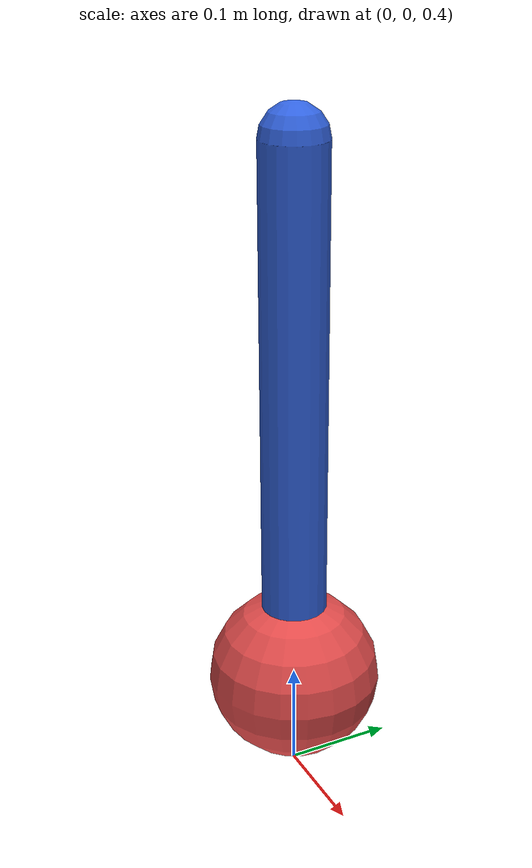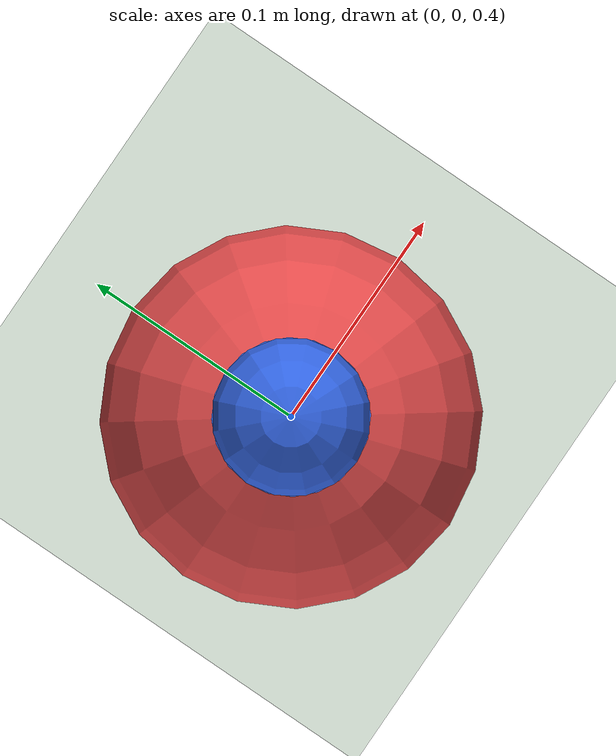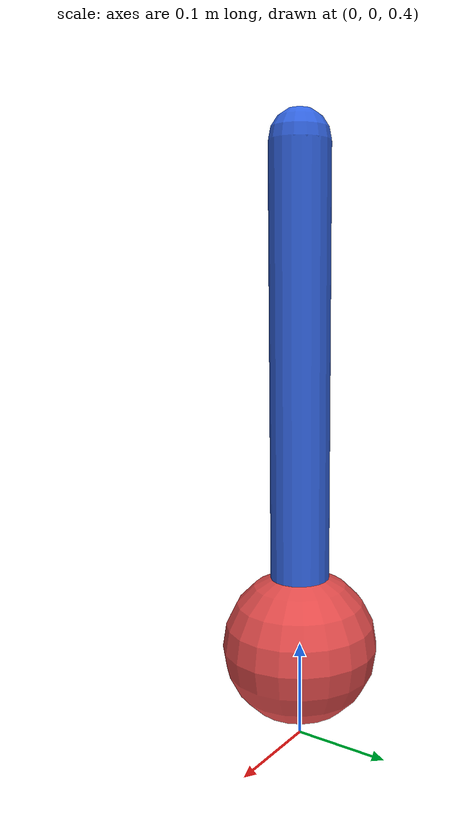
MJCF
<?xml version='1.0'?>
<mujoco model="pendulum">
  <option timestep="0.002" gravity="0 0 -9.81"/>
  <compiler angle="degree" coordinate="local" inertiafromgeom="true"/>

  <default>
    <geom rgba="0.8 0.8 0.8 1"/>
  </default>

  <worldbody>
    <geom type="plane" size="1 1 0.1" pos="0 0 0" rgba="0.9 0.95 0.9 1"/>
    <body name="pend" pos="0 0 1.0">
      <joint name="hinge" type="hinge" axis="0 1 0" limited="true" range="-180 180" damping="0.01"/>
      <geom type="capsule" fromto="0 0 0  0 0 -0.5" size="0.03" rgba="0.2 0.4 0.9 1"/>
      <geom type="sphere" pos="0 0 -0.5" size="0.08" density="500" rgba="0.9 0.3 0.3 1"/>
    </body>
  </worldbody>

  <actuator>
    <motor name="motor" joint="hinge" gear="1" ctrlrange="-1 1"/>
  </actuator>
</mujoco>
